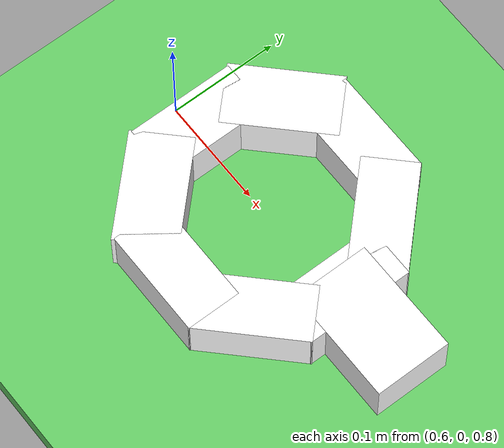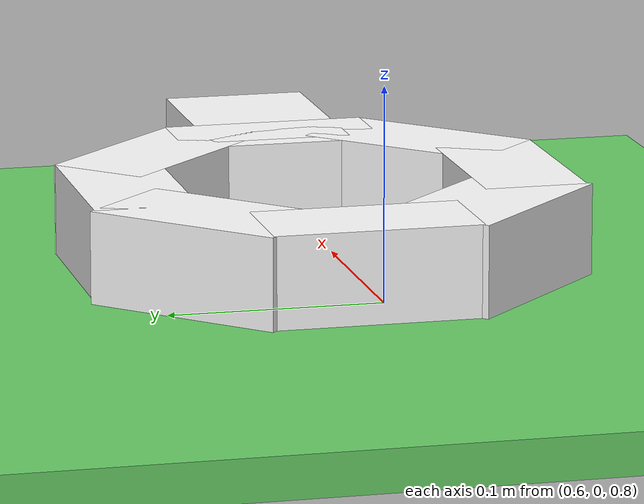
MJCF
<mujoco>
	<compiler angle="radian" coordinate="local" />
	<option gravity="0 0 0" integrator="Euler" iterations="500" solver="CG" timestep="0.001" tolerance="1e-10">
		<flag warmstart="enable" />
	</option>
	<asset>
		<texture builtin="gradient" height="32" rgb1="0.44 0.85 0.56" rgb2="0.46 0.87 0.58" type="skybox" width="32" />
	</asset>

	<include file="tmp.xml" />
	<include file="ground.xml" />

	<include file="table.xml" />

	<worldbody>
		<light ambient="0.2 0.2 0.2" castshadow="true" diffuse="0.8 0.8 0.8" dir="0 0 -1" directional="true" name="light0" pos="0 0 4" specular="0.3 0.3 0.3" />
		<camera fovy="90" name="top_camera_rgb" pos="0.8 0 1.666" quat="1.0 0 0 0" />
	</worldbody>
</mujoco>

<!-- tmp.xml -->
<mujoco model="round-nut">
  <asset>
    <texture file="../textures/metal.png" name="tex-metal" type="2d" />
    <material name="metal" reflectance="0.7" texrepeat="1 1" texture="tex-metal" texuniform="true" />
  </asset>
  <worldbody>

      <body name="object0" pos="0.7250000000000001 0.0 0.81" quat="6.123233995736766e-17 0.0 0.0 -1.0">
        <joint damping="0.1" limited="false" name="object0:joint" type="free" />
        <geom condim="4" density="100" friction="0.95 0.3 0.1" group="1" name="object0" pos="-0.09339000000000001 0.0 0.0" rgba="1 1 1 1" size="0.02475 0.0495 0.022000000000000002" solimp="0.998 0.998 0.001" solref="0.02 1" type="box" />
        <geom condim="4" density="100" friction="0.95 0.3 0.1" group="1" name="object1" pos="0.09339000000000001 0.0 0.0" rgba="1 1 1 1" size="0.02475 0.0495 0.022000000000000002" solimp="0.998 0.998 0.001" solref="0.02 1" type="box" />
        <geom condim="4" density="100" friction="0.95 0.3 0.1" group="1" name="object2" pos="0.0 -0.09339000000000001 0.0" rgba="1 1 1 1" size="0.0495 0.02475 0.022000000000000002" solimp="0.998 0.998 0.001" solref="0.02 1" type="box" />
        <geom condim="4" density="100" friction="0.95 0.3 0.1" group="1" name="object3" pos="0.0 0.09339000000000001 0.0" rgba="1 1 1 1" size="0.0495 0.02475 0.022000000000000002" solimp="0.998 0.998 0.001" solref="0.02 1" type="box" />
        <geom axisangle="0 0 1 0.785398" condim="4" density="100" friction="0.95 0.3 0.1" group="1" name="object4" pos="-0.066 -0.066 0.0" rgba="1 1 1 1" size="0.02475 0.0495 0.022000000000000002" solimp="0.998 0.998 0.001" solref="0.02 1" type="box" />
        <geom axisangle="0 0 1 0.785398" condim="4" density="100" friction="0.95 0.3 0.1" group="1" name="object5" pos="0.066 0.066 0.0" rgba="1 1 1 1" size="0.027500000000000004 0.0495 0.022000000000000002" solimp="0.998 0.998 0.001" solref="0.02 1" type="box" />
        <geom axisangle="0 0 1 0.785398" condim="4" density="100" friction="0.95 0.3 0.1" group="1" name="object6" pos="0.066 -0.066 0.0" rgba="1 1 1 1" size="0.0495 0.027500000000000004 0.022000000000000002" solimp="0.998 0.998 0.001" solref="0.02 1" type="box" />
        <geom axisangle="0 0 1 0.785398" condim="4" density="100" friction="0.95 0.3 0.1" group="1" name="object7" pos="-0.066 0.066 0.0" rgba="1 1 1 1" size="0.0495 0.02475 0.022000000000000002" solimp="0.998 0.998 0.001" solref="0.02 1" type="box" />
        <geom condim="4" density="100" friction="0.95 0.3 0.1" group="1" name="object8" pos="-0.132 0.0 0.0" rgba="1 1 1 1" size="0.05280000000000001 0.034925000000000005 0.022000000000000002" solimp="0.998 0.998 0.001" solref="0.02 1" type="box" />
      </body>

  </worldbody>
</mujoco>

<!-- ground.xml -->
<mujoco>
	<asset>
		<texture name="ground_texture" type="2d" file="./textures/hexagon_1.png"></texture>
		<texture name="ground_checker" type="2d" builtin="checker" rgb1="0.1 0.1 0.40" rgb2="0.15 0.15 0.60" height="40" width="40"></texture>
		<material name="floor_mat" texture="ground_checker" specular="0.0" shininess="0.1" reflectance="0.50" texrepeat="15 10"></material>
		<texture name="texplane" type="2d" builtin="checker" rgb1=".2 .3 .4" rgb2=".1 0.15 0.2" width="100" height="100"/>

        <material name='MatPlane' reflectance='0.5' texture="texplane" texrepeat="4 4" texuniform="true"/>
	</asset>

	<worldbody>
		<geom name='floor' pos='0 0 0' size='2 2 0.0125' type='plane' solimp="0.0 0.55 0.001" solref="0.002 1" material="MatPlane" condim='3'/>
	</worldbody>
</mujoco>

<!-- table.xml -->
<mujoco>
	<asset>
		<material name="table_mat" specular="0" shininess="0" reflectance="0.5" rgba="0.4 0.8 0.4 1"></material>
	</asset>

	<worldbody>
		<body pos="0.80 0.0 0.76" name="table0">
			<geom size="0.896 0.896 0.01" solimp="0.0 0.55 0.001" solref="0.002 1" condim="3" margin="0" type="box" mass="2000" material="table_mat" name="table0"></geom>
		</body>
	</worldbody>
</mujoco>
